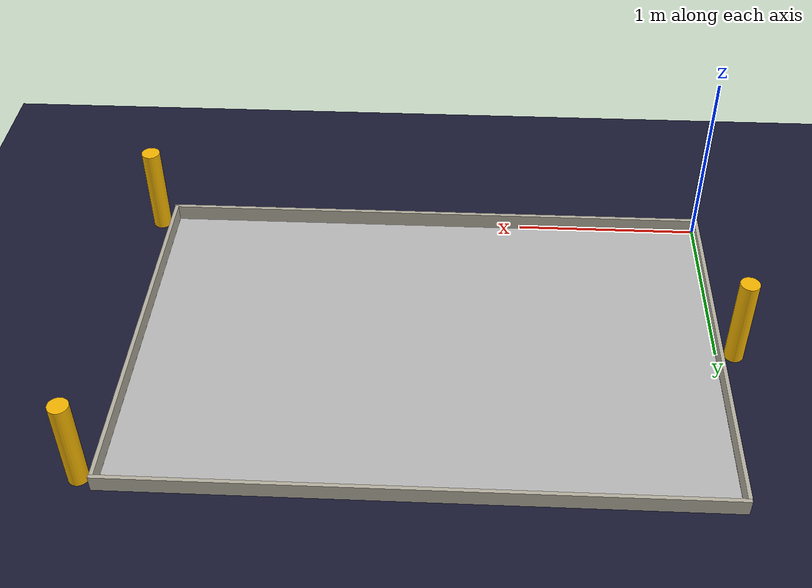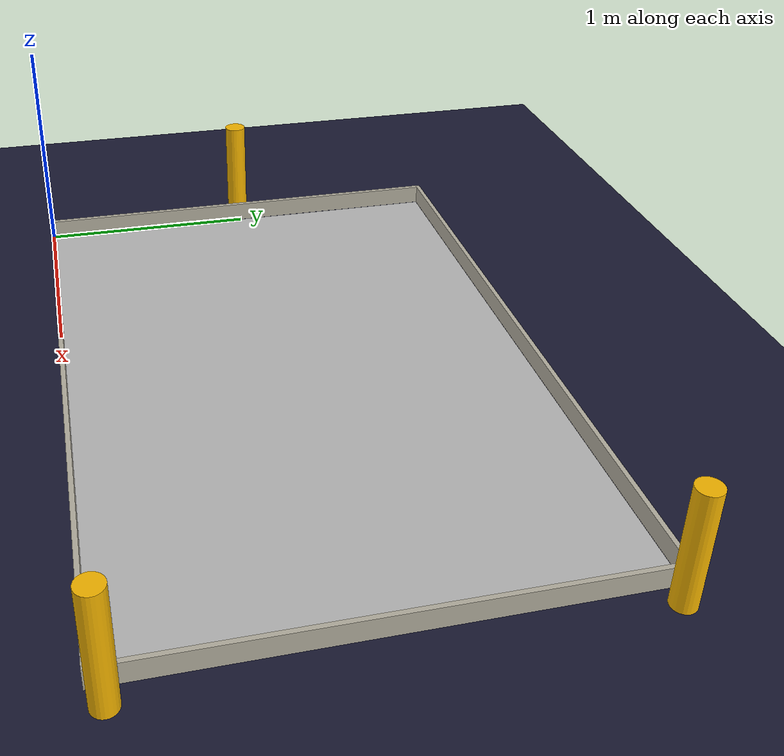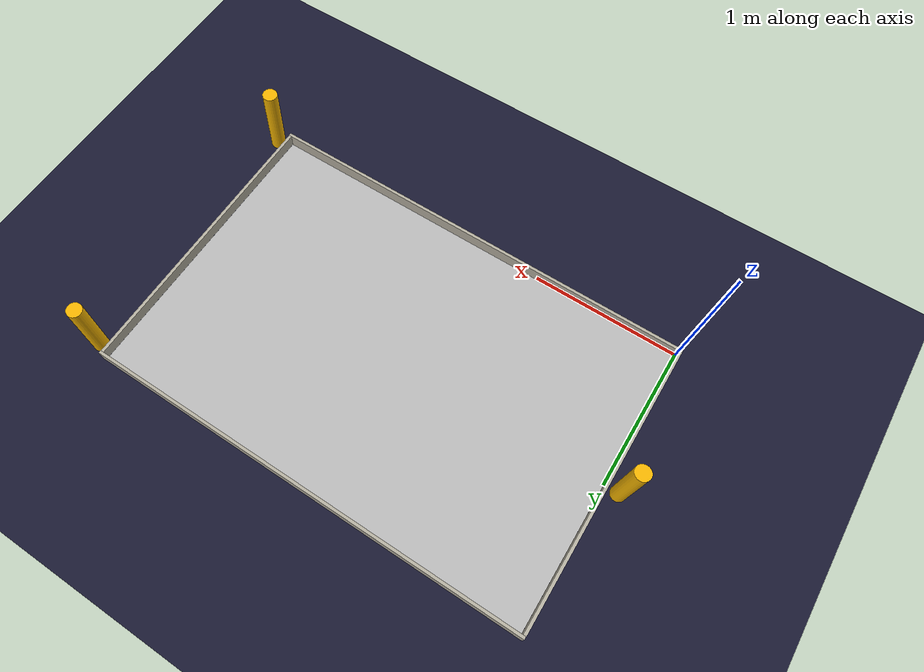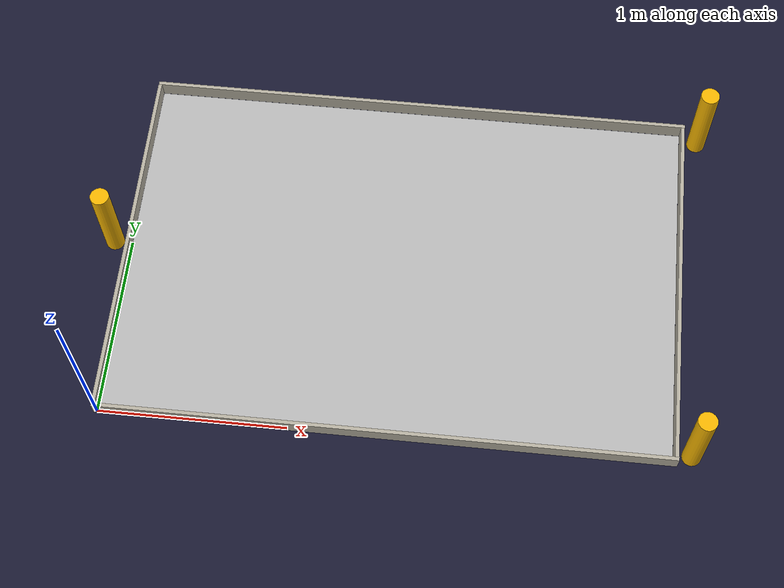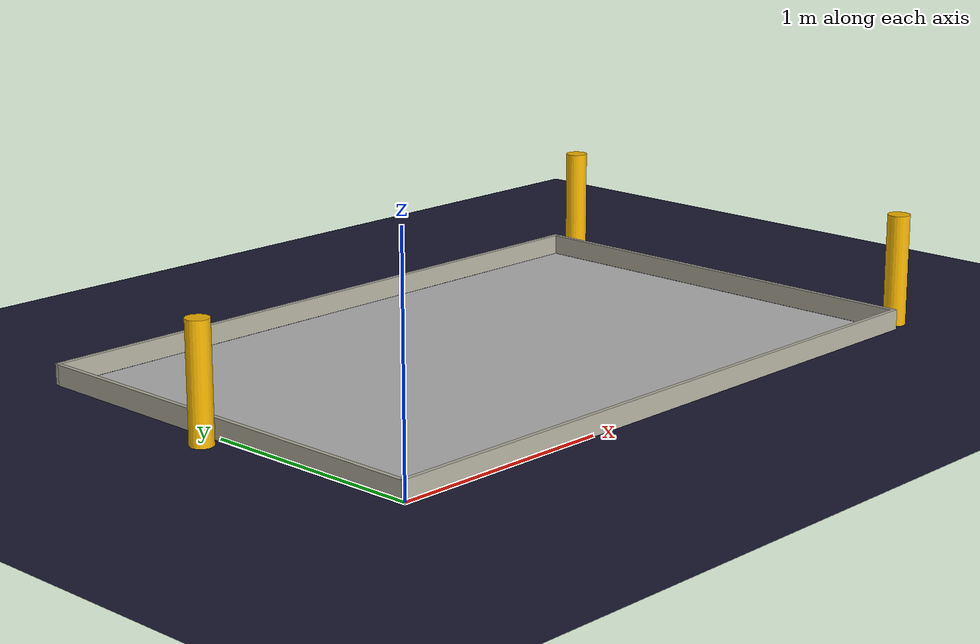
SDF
<?xml version="1.0" ?>
<sdf version="1.4">

  <world name="eurobot_2022">
    <plugin filename="gz-sim-physics-system" name="gz::sim::systems::Physics"></plugin>
    <plugin filename="gz-sim-user-commands-system" name="gz::sim::systems::UserCommands"></plugin>
    <plugin filename="gz-sim-scene-broadcaster-system" name="gz::sim::systems::SceneBroadcaster"></plugin>
    <plugin filename="gz-sim-sensors-system" name="gz::sim::systems::Sensors">
      <render_engine>ogre2</render_engine>
    </plugin>
    <plugin filename="gz-sim-imu-system" name="gz::sim::systems::Imu"></plugin>

    <scene>
      <ambient>0.4 0.4 0.4 1</ambient>
      <shadows>false</shadows>
    </scene>
    <light type="directional" name="light1">
      <pose>1.5 1 50 0 0 0</pose>
      <diffuse>0.5 0.5 0.5 1</diffuse>
      <specular>1 1 1 0</specular>
      <direction>1 0 0.5</direction>
    </light>
    <light type="directional" name="light2">
      <pose>1.5 1 50 0 0 0</pose>
      <diffuse>0.5 0.5 0.5 1</diffuse>
      <specular>1 1 1 0</specular>
      <direction>1 0 -0.5</direction>
    </light>

    <model name="ground_plane">
      <static>true</static>
      <link name="ground_link">
        <collision name="collision1">
          <geometry>
            <plane>
              <normal>0 0 1</normal>
            </plane>
          </geometry>
        </collision>
        <visual name="visual1">
          <geometry>
            <plane>
              <normal>0 0 1</normal>
              <size>100 100</size>
            </plane>
          </geometry>
        <material>
          <ambient>0.1 0.1 0.1 0</ambient>
          <diffuse>0.1 0.1 0.2 0</diffuse>
          <specular>0 0 0 0</specular>
          <emissive>0 0 0 0</emissive>
        </material>
        </visual>
      </link>
    </model>

    <!--Playground-->
    <include>
        <name>playground</name>
        <uri>model://eurobot_playground_22</uri>
        <pose>1.5 1.0 -0.001 0 0 0</pose>
    </include>

    <!--Walls-->
    <model name="wall1">
      <static>true</static>
      <pose>1.502 0 0.045 0 0 0</pose>
      <link name="body">
          <collision name="collision1">
              <geometry>
              <box>
                  <size>3.04 0.02 0.09</size>
              </box>
              </geometry>
          </collision>
          <visual name="visual1">
              <geometry>
              <box>
                  <size>3.04 0.02 0.09</size>
              </box>
              </geometry>
              <material>
              <ambient>0.71 0.69 0.63 1.0</ambient>
              <diffuse>0.71 0.69 0.63 1.0</diffuse>
              <specular>0.1 0.1 0.1 1</specular>
              <emissive>0 0 0 0</emissive>
              </material>
          </visual>
      </link>
    </model>
    <model name="wall2">
      <static>true</static>
      <pose>1.502 2.01 0.045 0 0 0</pose>
      <link name="body">
          <collision name="collision1">
              <geometry>
              <box>
                  <size>3.04 0.02 0.09</size>
              </box>
              </geometry>
          </collision>
          <visual name="visual1">
              <geometry>
              <box>
                  <size>3.04 0.02 0.09</size>
              </box>
              </geometry>
              <material>
              <ambient>0.71 0.69 0.63 1.0</ambient>
              <diffuse>0.71 0.69 0.63 1.0</diffuse>
              <specular>0.1 0.1 0.1 1</specular>
              <emissive>0 0 0 0</emissive>
              </material>
          </visual>
      </link>
    </model>
    <model name="wall3">
        <static>true</static>
        <pose>3.01 1.0 0.045 0 0 0</pose>
        <link name="body">
            <collision name="collision1">
                <geometry>
                <box>
                    <size>0.02 2.0 0.09</size>
                </box>
                </geometry>
            </collision>
            <visual name="visual1">
                <geometry>
                <box>
                    <size>0.02 2 0.09</size>
                </box>
                </geometry>
                <material>
                <ambient>0.71 0.69 0.63 1.0</ambient>
                <diffuse>0.71 0.69 0.63 1.0</diffuse>
                <specular>0.1 0.1 0.1 1</specular>
                <emissive>0 0 0 0</emissive>
                </material>
            </visual>
        </link>
    </model>
    <model name="wall4">
        <static>true</static>
        <pose>-0.01 1.0 0.045 0 0 0</pose>
        <link name="body">
            <collision name="collision1">
                <geometry>
                <box>
                    <size>0.02 2.0 0.09</size>
                </box>
                </geometry>
            </collision>
            <visual name="visual1">
                <geometry>
                <box>
                    <size>0.02 2 0.09</size>
                </box>
                </geometry>
                <material>
                <ambient>0.71 0.69 0.63 1.0</ambient>
                <diffuse>0.71 0.69 0.63 1.0</diffuse>
                <specular>0.1 0.1 0.1 1</specular>
                <emissive>0 0 0 0</emissive>
                </material>
            </visual>
        </link>
    </model>

    <!--Landmarks yellow-->
    <model name="landmark2">
      <pose>-0.094 1.0 0.25 0 0 0</pose>
      <static>true</static>
      <link name="link">
        <collision name="collision">
          <geometry>
            <cylinder>
              <length>0.5</length>
              <radius>0.05</radius>
            </cylinder>
          </geometry>
          <laser_retro>20.0</laser_retro>
        </collision>
        <visual name="visual">
          <geometry>
            <cylinder>
              <length>0.5</length>
              <radius>0.05</radius>
            </cylinder>
          </geometry>
            <material>
              <ambient>0.96 0.71 0.0 1</ambient>
              <diffuse>0.96 0.71 0.0 1</diffuse>
              <specular>0 0 0 0</specular>
              <emissive>0 0 0 0</emissive>
          </material>
        </visual>
      </link>
    </model>

    <model name="landmark4">
      <pose>3.094 0.05 0.25 0 0 0</pose>
      <static>true</static>
      <link name="link">
        <collision name="collision">
          <geometry>
            <cylinder>
              <length>0.5</length>
              <radius>0.05</radius>
            </cylinder>
          </geometry>
          <laser_retro>40.0</laser_retro>
        </collision>
        <visual name="visual">
          <geometry>
            <cylinder>
              <length>0.5</length>
              <radius>0.05</radius>
            </cylinder>
          </geometry>
            <material>
              <ambient>0.96 0.71 0.0 1</ambient>
              <diffuse>0.96 0.71 0.0 1</diffuse>
              <specular>0 0 0 0</specular>
              <emissive>0 0 0 0</emissive>
          </material>
        </visual>
      </link>
    </model>

    <model name="landmark6">
      <pose>3.094 1.95 0.25 0 0 0</pose>
      <static>true</static>
      <link name="link">
        <collision name="collision">
          <geometry>
            <cylinder>
              <length>0.5</length>
              <radius>0.05</radius>
            </cylinder>
          </geometry>
          <laser_retro>60.0</laser_retro>
        </collision>
        <visual name="visual">
          <geometry>
            <cylinder>
              <length>0.5</length>
              <radius>0.05</radius>
            </cylinder>
          </geometry>
            <material>
              <ambient>0.96 0.71 0.0 1</ambient>
              <diffuse>0.96 0.71 0.0 1</diffuse>
              <specular>0 0 0 0</specular>
              <emissive>0 0 0 0</emissive>
          </material>
        </visual>
      </link>
    </model>

    <!--Landmarks purple-->

  </world>
</sdf>

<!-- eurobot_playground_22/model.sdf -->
<sdf version="1.6">
  <model name="Eurobot Playground Model">
    <static>true</static>
  <link name="plane">
      <collision name="plane_collision">
        <geometry>
          <box>
            <size>3 2 0.0001</size>
          </box>
        </geometry>
      </collision>
      <visual name="plane_visual">
        <geometry>
          <box>
            <size>3 2 0.0001</size>
          </box>
        </geometry>
        <material>
          <script>
              <uri>model://eurobot_playground_22/materials/scripts</uri>
              <uri>model://eurobot_playground_22/materials/textures/</uri>
              <name>Playground/2022</name>
          </script>
      </material>
      </visual>
    </link>

  </model>
</sdf>
